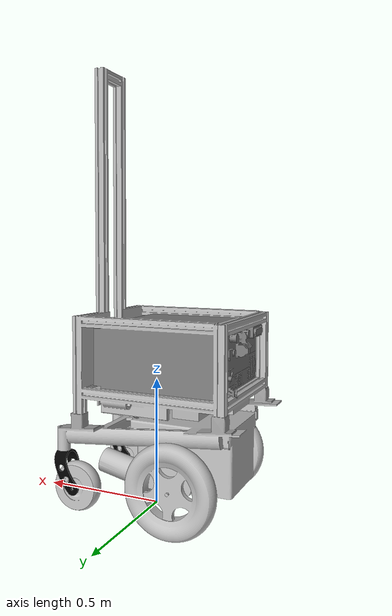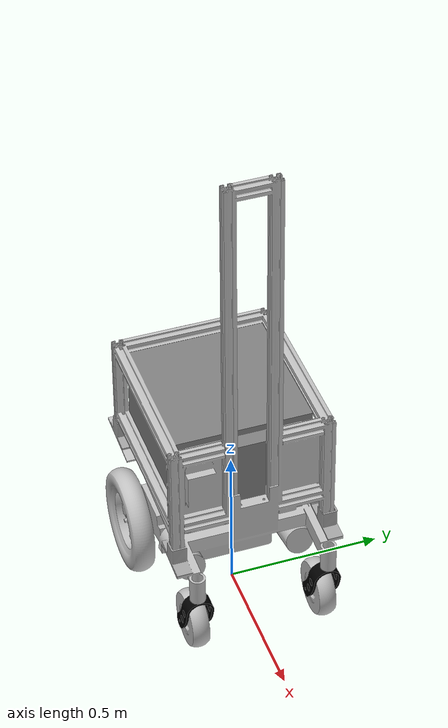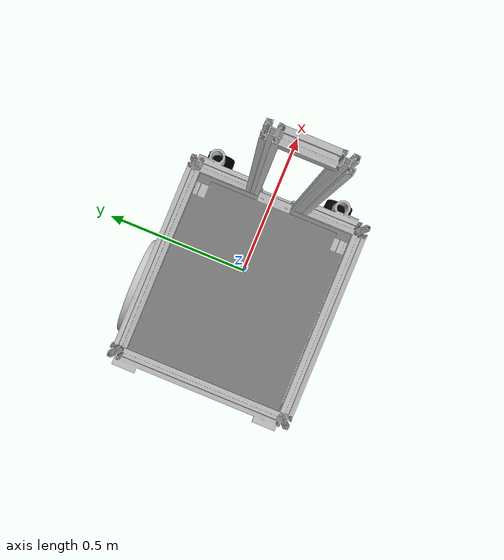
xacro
<?xml version="1.0" ?>
<robot name="abby" xmlns:xacro="http://ros.org/wiki/xacro">
    <link name="base_link" />
    <joint name="base_frame_joint" type="fixed" >
        <parent link="base_link" />
        <child link="frame_link" />
        <origin xyz="0.0 0.0 0.0" rpy="0.0 0.0 ${pi}"/>
    </joint>

    <link name="frame_link">
        <visual>
            <origin xyz="0 0 0" rpy="0 0 0" />
            <geometry>
                <mesh filename="package://abby_description/meshes/abby_base.dae" />
            </geometry>
        </visual>
        <collision>
            <origin xyz="0.07 0.0 0.52" rpy="0.0 0.0 0.0"/>
            <geometry>
                <box size="0.62 0.55 0.5" />
            </geometry>
        </collision>
        <collision>
            <origin xyz="0.17 0.0 0.18" rpy="0.0 0.0 0.0"/>
            <geometry>
                <box size="0.38 0.25 0.15" />
            </geometry>
        </collision>
        <collision>
            <origin xyz="-0.21 0.0 1.075" rpy="0.0 0.0 0.0"/>
            <geometry>
                <box size="0.05 0.2 1.3" />
            </geometry>
        </collision>
    </link>

    <xacro:macro name="wheels" params="side reflect">
        <joint name="frame_${side}_wheel_joint" type="continuous">
            <parent link="frame_link" />
            <origin xyz="0.183538 ${0.281685 * reflect} 0.170748" rpy="0.0 0.0 0.0" />
            <axis xyz="0.0 -1.0 0.0"/>
            <child link="${side}_wheel_link" />
            <limit effort="10000" velocity="10000" />
        </joint>

        <link name="${side}_wheel_link">
            <visual>
                <origin xyz="0.0 0.0 0.0" rpy="0.0 0.0 0.0"/>
                <geometry>
                    <mesh filename="package://abby_description/meshes/wheel.dae" />
                </geometry>
            </visual>
            <collision>
                <origin xyz="0.0 0.0 0.0" rpy="0.0 0.0 0.0"/>
                <geometry>
                    <sphere radius="0.16862" />
                </geometry>
            </collision>
        </link>

        <joint name="frame_${side}_caster_joint" type="continuous">
            <parent link="frame_link" />
            <child link="${side}_caster_link" />
            <origin xyz="-0.294566 ${0.210123 * reflect} 0.264089" rpy="0.0 0.0 0.0" />
            <limit effort="10000" velocity="10000" />
            <axis xyz="0.0 0.0 1.0" />
        </joint>

        <link name="${side}_caster_link">
            <visual>
                <origin xyz="0.294566 -0.210123 -0.264089" rpy="0.0 0.0 0.0" />
                <geometry>
                    <mesh filename="package://abby_description/meshes/caster.dae" />
                </geometry>
            </visual>
            <collision>
                <origin xyz="0.0 0.0 0.025" rpy="0.0 0.0 0.0" />
                <geometry>
                    <cylinder length="0.1" radius="0.025" />
                </geometry>
            </collision>
            <collision>
                <origin xyz="0.03 0.0 -0.095" rpy="0.0 ${-pi/7} 0.0"/>
                <geometry>
                    <box size="0.05 0.075 0.17" />
                </geometry>
            </collision>
        </link>

        <joint name="${side}_caster_${side}_caster_wheel_joint" type="continuous">
            <parent link="${side}_caster_link" />
            <child link="${side}_caster_wheel_link" />
            <origin xyz="0.05715 0.0 -0.161924" rpy="0.0 0.0 0.0" />
            <limit effort="10000" velocity="10000" />
            <axis xyz="0.0 1.0 0.0" />
        </joint>

        <link name="${side}_caster_wheel_link">
            <visual>
                <origin xyz="0.05715 0.0 0.161924" rpy="0.0 0.0 ${pi/2}" />
                <geometry>
                    <mesh filename="package://abby_description/meshes/caster_wheel.dae" />
                </geometry>
            </visual>
            <collision>
                <origin xyz="0.0 0.0 0.0" rpy="0.0 0.0 0.0" />
                <geometry>
                    <sphere radius="0.09523" />
                </geometry>
            </collision>
        </link>

    </xacro:macro>

    <xacro:wheels side="r" reflect="1" />
    <xacro:wheels side="l" reflect="-1" />

</robot>
